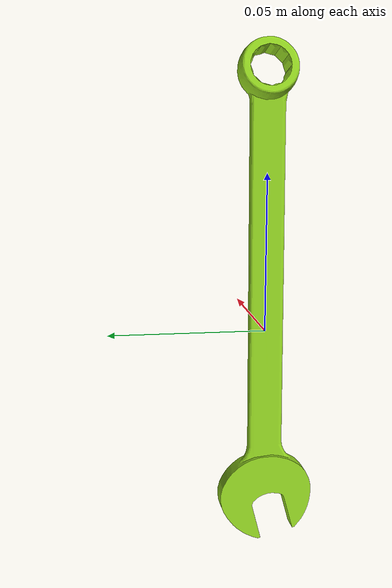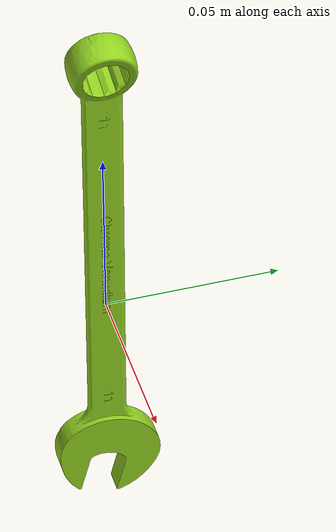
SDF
<?xml version="1.0"?>
<sdf version="1.7">
  <model name="combination_wrench_11mm_bright">
    <pose>0 0 0 0 0 0</pose>
    <static>false</static>
    <link name="link">
      <!-- link frame = tool CoM; Z = long axis (+ toward tool end), X = forward, Y = Z x X -->
      <inertial>
        <pose>0 0 0 0 0 0</pose>
        <mass>0.066886</mass>
        <inertia>
          <ixx>1.859455e-04</ixx>
          <ixy>-2.772941e-21</ixy>
          <ixz>-9.311513e-23</ixz>
          <iyy>1.838168e-04</iyy>
          <iyz>-1.671997e-22</iyz>
          <izz>2.536336e-06</izz>
        </inertia>
      </inertial>
      <collision name="collision">
        <geometry>
          <mesh>
            <uri>model://combination_wrench_11mm/meshes/combination_wrench_11mm.dae</uri>
          </mesh>
        </geometry>
      </collision>
      <visual name="visual">
        <geometry>
          <mesh>
            <uri>model://combination_wrench_11mm/meshes/combination_wrench_11mm.dae</uri>
          </mesh>
        </geometry>
        <material>
          <ambient>0.255 0.369 0.055 1.0</ambient>
          <diffuse>0.566 0.820 0.123 1.0</diffuse>
          <specular>0.85 0.85 0.85 1.0</specular>
          <emissive>0 0 0 1.0</emissive>
        </material>
      </visual>
    </link>
  </model>
</sdf>
